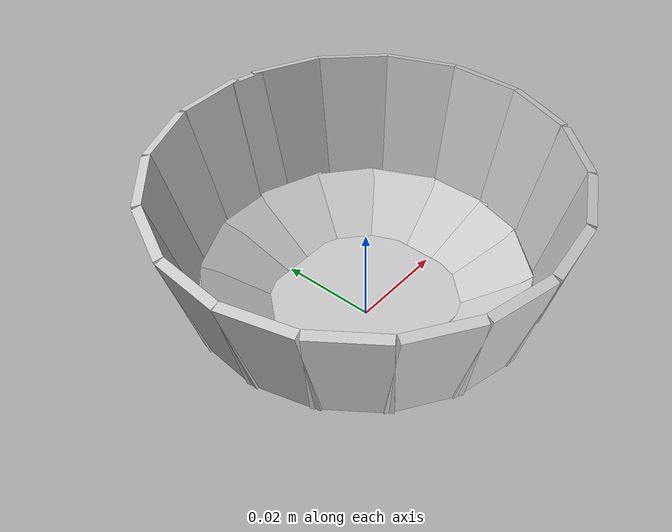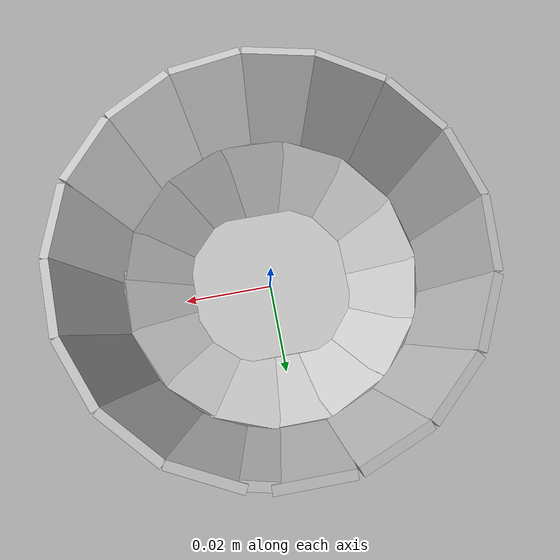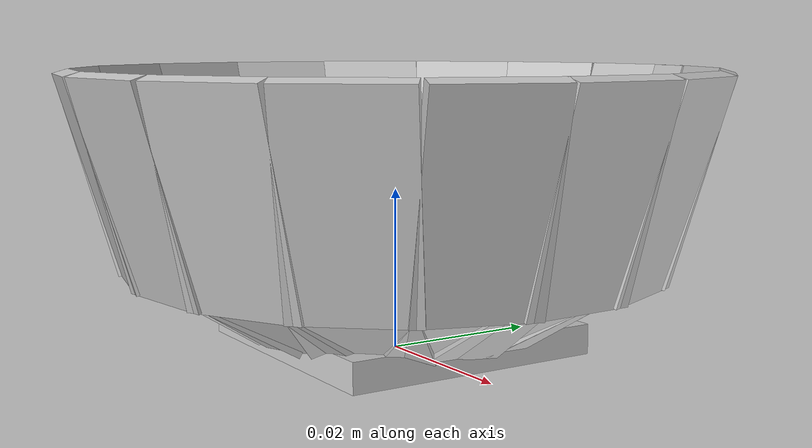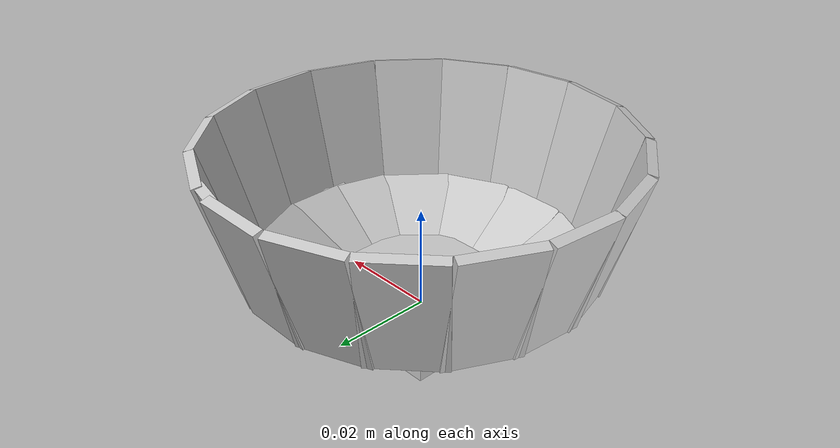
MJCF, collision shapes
<mujoco model="model">
  <asset>
  <texture file="meshes/red_bowl/texture.png" name="tex-model" type="2d" />
  <material name="model" reflectance="0.5" texrepeat="1 1" texture="tex-model" texuniform="false" />
  <mesh file="meshes/red_bowl/visual/model_vis.msh" name="model_vis" scale="1.3 1.3 1.15" /></asset>
  <worldbody>
    <body>
      <body name="object">
      <geom solimp="0.998 0.998 0.001" solref="0.001 1" density="100" friction="0.95 0.3 0.1" type="mesh" mesh="model_vis" conaffinity="0" contype="0" group="1" material="model" />

      <geom solimp="0.998 0.998 0.001" solref="0.001 1" density="100" friction="0.95 0.3 0.1" type="box" pos="0.00000 0.00009 0.00240" quat="0.70711 0.00000 0.70711 0.00000" size="0.00184 0.01653 0.01728" group="0" rgba="0.8 0.8 0.8 0." />
      <geom solimp="0.998 0.998 0.001" solref="0.001 1" density="100" friction="0.95 0.3 0.1" type="box" pos="-0.00007 0.02401 0.00671" quat="0.60990 -0.35780 -0.35780 -0.60990" size="0.00051 0.00709 0.00848" group="0" rgba="0.8 0.8 0.8 0." />
      <geom solimp="0.998 0.998 0.001" solref="0.001 1" density="100" friction="0.95 0.3 0.1" type="box" pos="-0.01049 0.02155 0.00685" quat="0.45959 -0.42672 0.26704 0.73169" size="0.00051 0.00709 0.00848" group="0" rgba="0.8 0.8 0.8 0." />
      <geom solimp="0.998 0.998 0.001" solref="0.001 1" density="100" friction="0.95 0.3 0.1" type="box" pos="-0.01860 0.01506 0.00697" quat="0.29172 -0.47299 0.16619 0.81459" size="0.00051 0.00709 0.00848" group="0" rgba="0.8 0.8 0.8 0." />
      <geom solimp="0.998 0.998 0.001" solref="0.001 1" density="100" friction="0.95 0.3 0.1" type="box" pos="-0.02323 0.00567 0.00703" quat="0.10855 -0.49698 0.05658 0.85908" size="0.00051 0.00709 0.00848" group="0" rgba="0.8 0.8 0.8 0." />
      <geom solimp="0.998 0.998 0.001" solref="0.001 1" density="100" friction="0.95 0.3 0.1" type="box" pos="-0.02348 -0.00453 0.00703" quat="0.49761 -0.07722 0.86246 0.05074" size="0.00051 0.00709 0.00848" group="0" rgba="0.8 0.8 0.8 0." />
      <geom solimp="0.998 0.998 0.001" solref="0.001 1" density="100" friction="0.95 0.3 0.1" type="box" pos="-0.01923 -0.01422 0.00703" quat="0.47408 -0.26597 0.82406 0.15949" size="0.00051 0.00709 0.00848" group="0" rgba="0.8 0.8 0.8 0." />
      <geom solimp="0.998 0.998 0.001" solref="0.001 1" density="100" friction="0.95 0.3 0.1" type="box" pos="-0.01112 -0.02117 0.00703" quat="0.42646 -0.44336 0.74380 0.26138" size="0.00051 0.00709 0.00848" group="0" rgba="0.8 0.8 0.8 0." />
      <geom solimp="0.998 0.998 0.001" solref="0.001 1" density="100" friction="0.95 0.3 0.1" type="box" pos="-0.00087 -0.02390 0.00703" quat="0.59728 0.35787 0.34946 -0.62695" size="0.00051 0.00709 0.00848" group="0" rgba="0.8 0.8 0.8 0." />
      <geom solimp="0.998 0.998 0.001" solref="0.001 1" density="100" friction="0.95 0.3 0.1" type="box" pos="0.00965 -0.02188 0.00703" quat="0.72249 0.27055 0.42070 -0.47731" size="0.00051 0.00709 0.00848" group="0" rgba="0.8 0.8 0.8 0." />
      <geom solimp="0.998 0.998 0.001" solref="0.001 1" density="100" friction="0.95 0.3 0.1" type="box" pos="0.01802 -0.01572 0.00703" quat="0.17267 -0.80894 0.30891 0.46945" size="0.00051 0.00709 0.00848" group="0" rgba="0.8 0.8 0.8 0." />
      <geom solimp="0.998 0.998 0.001" solref="0.001 1" density="100" friction="0.95 0.3 0.1" type="box" pos="0.02302 -0.00650 0.00703" quat="0.85700 0.06550 0.49588 -0.12397" size="0.00051 0.00709 0.00848" group="0" rgba="0.8 0.8 0.8 0." />
      <geom solimp="0.998 0.998 0.001" solref="0.001 1" density="100" friction="0.95 0.3 0.1" type="box" pos="0.02302 -0.00650 0.00703" quat="0.85700 0.06550 0.49588 -0.12397" size="0.00051 0.00709 0.00848" group="0" rgba="0.8 0.8 0.8 0." />
      <geom solimp="0.998 0.998 0.001" solref="0.001 1" density="100" friction="0.95 0.3 0.1" type="box" pos="0.02391 0.00015 0.00703" quat="0.86591 -0.00473 0.50017 -0.00248" size="0.00051 0.00709 0.00848" group="0" rgba="0.8 0.8 0.8 0." />
      <geom solimp="0.998 0.998 0.001" solref="0.001 1" density="100" friction="0.95 0.3 0.1" type="box" pos="0.02169 0.01008 0.00703" quat="0.84663 -0.11101 0.48771 0.18175" size="0.00051 0.00709 0.00848" group="0" rgba="0.8 0.8 0.8 0." />
      <geom solimp="0.998 0.998 0.001" solref="0.001 1" density="100" friction="0.95 0.3 0.1" type="box" pos="0.01540 0.01830 0.00703" quat="0.21392 0.78724 0.36065 -0.45213" size="0.00051 0.00709 0.00848" group="0" rgba="0.8 0.8 0.8 0." />
      <geom solimp="0.998 0.998 0.001" solref="0.001 1" density="100" friction="0.95 0.3 0.1" type="box" pos="0.00826 0.02244 0.00703" quat="0.71324 -0.28870 0.40847 0.49101" size="0.00051 0.00709 0.00848" group="0" rgba="0.8 0.8 0.8 0." />
      <geom solimp="0.998 0.998 0.001" solref="0.001 1" density="100" friction="0.95 0.3 0.1" type="box" pos="-0.00007 0.03575 0.02264" quat="0.10134 0.69981 0.69981 -0.10134" size="0.00096 0.00709 0.01266" group="0" rgba="0.8 0.8 0.8 0." />
      <geom solimp="0.998 0.998 0.001" solref="0.001 1" density="100" friction="0.95 0.3 0.1" type="box" pos="-0.01308 0.03327 0.02264" quat="0.55811 -0.11836 0.08082 0.81730" size="0.00096 0.00709 0.01266" group="0" rgba="0.8 0.8 0.8 0." />
      <geom solimp="0.998 0.998 0.001" solref="0.001 1" density="100" friction="0.95 0.3 0.1" type="box" pos="-0.02408 0.02642 0.02264" quat="0.13104 0.40078 0.90490 -0.05804" size="0.00096 0.00709 0.01266" group="0" rgba="0.8 0.8 0.8 0." />
      <geom solimp="0.998 0.998 0.001" solref="0.001 1" density="100" friction="0.95 0.3 0.1" type="box" pos="-0.03197 0.01599 0.02264" quat="0.13945 0.22841 0.96296 -0.03308" size="0.00096 0.00709 0.01266" group="0" rgba="0.8 0.8 0.8 0." />
      <geom solimp="0.998 0.998 0.001" solref="0.001 1" density="100" friction="0.95 0.3 0.1" type="box" pos="-0.03558 0.00349 0.02264" quat="0.04942 -0.14314 0.00715 0.98844" size="0.00096 0.00709 0.01266" group="0" rgba="0.8 0.8 0.8 0." />
      <geom solimp="0.998 0.998 0.001" solref="0.001 1" density="100" friction="0.95 0.3 0.1" type="box" pos="-0.03456 -0.00914 0.02264" quat="0.14214 -0.12653 0.98155 0.01832" size="0.00096 0.00709 0.01266" group="0" rgba="0.8 0.8 0.8 0." />
      <geom solimp="0.998 0.998 0.001" solref="0.001 1" density="100" friction="0.95 0.3 0.1" type="box" pos="-0.02902 -0.02087 0.02264" quat="0.30259 0.13646 0.04382 -0.94228" size="0.00096 0.00709 0.01266" group="0" rgba="0.8 0.8 0.8 0." />
      <geom solimp="0.998 0.998 0.001" solref="0.001 1" density="100" friction="0.95 0.3 0.1" type="box" pos="-0.01954 -0.02993 0.02264" quat="0.12610 -0.47028 0.87081 0.06810" size="0.00096 0.00709 0.01266" group="0" rgba="0.8 0.8 0.8 0." />
      <geom solimp="0.998 0.998 0.001" solref="0.001 1" density="100" friction="0.95 0.3 0.1" type="box" pos="-0.00766 -0.03492 0.02264" quat="0.61947 0.11177 0.08971 -0.77183" size="0.00096 0.00709 0.01266" group="0" rgba="0.8 0.8 0.8 0." />
      <geom solimp="0.998 0.998 0.001" solref="0.001 1" density="100" friction="0.95 0.3 0.1" type="box" pos="0.00530 -0.03535 0.02264" quat="0.74921 0.09364 0.10849 -0.64664" size="0.00096 0.00709 0.01266" group="0" rgba="0.8 0.8 0.8 0." />
      <geom solimp="0.998 0.998 0.001" solref="0.001 1" density="100" friction="0.95 0.3 0.1" type="box" pos="0.01764 -0.03109 0.02264" quat="0.07226 -0.85468 0.49898 0.12377" size="0.00096 0.00709 0.01266" group="0" rgba="0.8 0.8 0.8 0." />
      <geom solimp="0.998 0.998 0.001" solref="0.001 1" density="100" friction="0.95 0.3 0.1" type="box" pos="0.02755 -0.02278 0.02264" quat="0.93084 0.04868 0.13480 -0.33615" size="0.00096 0.00709 0.01266" group="0" rgba="0.8 0.8 0.8 0." />
      <geom solimp="0.998 0.998 0.001" solref="0.001 1" density="100" friction="0.95 0.3 0.1" type="box" pos="0.03395 -0.01119 0.02264" quat="0.97700 0.02287 0.14148 -0.15791" size="0.00096 0.00709 0.01266" group="0" rgba="0.8 0.8 0.8 0." />
      <geom solimp="0.998 0.998 0.001" solref="0.001 1" density="100" friction="0.95 0.3 0.1" type="box" pos="0.03572 0.00140 0.02264" quat="0.00267 0.98951 0.01840 -0.14329" size="0.00096 0.00709 0.01266" group="0" rgba="0.8 0.8 0.8 0." />
      <geom solimp="0.998 0.998 0.001" solref="0.001 1" density="100" friction="0.95 0.3 0.1" type="box" pos="0.03572 0.00140 0.02264" quat="0.00267 0.98951 0.01840 -0.14329" size="0.00096 0.00709 0.01266" group="0" rgba="0.8 0.8 0.8 0." />
      <geom solimp="0.998 0.998 0.001" solref="0.001 1" density="100" friction="0.95 0.3 0.1" type="box" pos="0.03293 0.01390 0.02264" quat="0.02829 0.97021 0.19533 -0.14050" size="0.00096 0.00709 0.01266" group="0" rgba="0.8 0.8 0.8 0." />
      <geom solimp="0.998 0.998 0.001" solref="0.001 1" density="100" friction="0.95 0.3 0.1" type="box" pos="0.02592 0.02462 0.02264" quat="0.13315 0.36606 -0.91949 0.05301" size="0.00096 0.00709 0.01266" group="0" rgba="0.8 0.8 0.8 0." />
      <geom solimp="0.998 0.998 0.001" solref="0.001 1" density="100" friction="0.95 0.3 0.1" type="box" pos="0.01569 0.03212 0.02264" quat="0.83995 -0.07579 0.12163 0.52340" size="0.00096 0.00709 0.01266" group="0" rgba="0.8 0.8 0.8 0." />
      <geom solimp="0.998 0.998 0.001" solref="0.001 1" density="100" friction="0.95 0.3 0.1" type="box" pos="0.00801 0.03484 0.02264" quat="0.08915 0.77490 0.61562 -0.11222" size="0.00094 0.00337 0.01264" group="0" rgba="0.8 0.8 0.8 0." />
    </body>
      <site rgba="0 0 0 0" size="0.005" pos="0 0 -0.06" name="bottom_site" />
      <site rgba="0 0 0 0" size="0.005" pos="0 0 0.04" name="top_site" />
      <site rgba="0 0 0 0" size="0.005" pos="0.025 0.025 0" name="horizontal_radius_site" />
    </body>
  </worldbody>
</mujoco>
